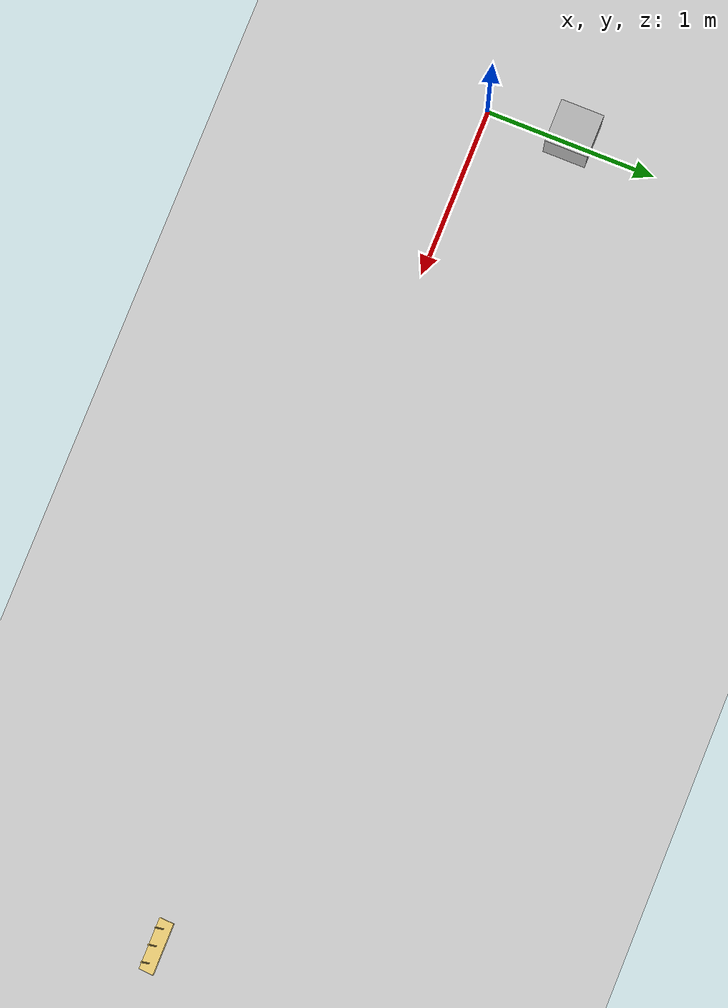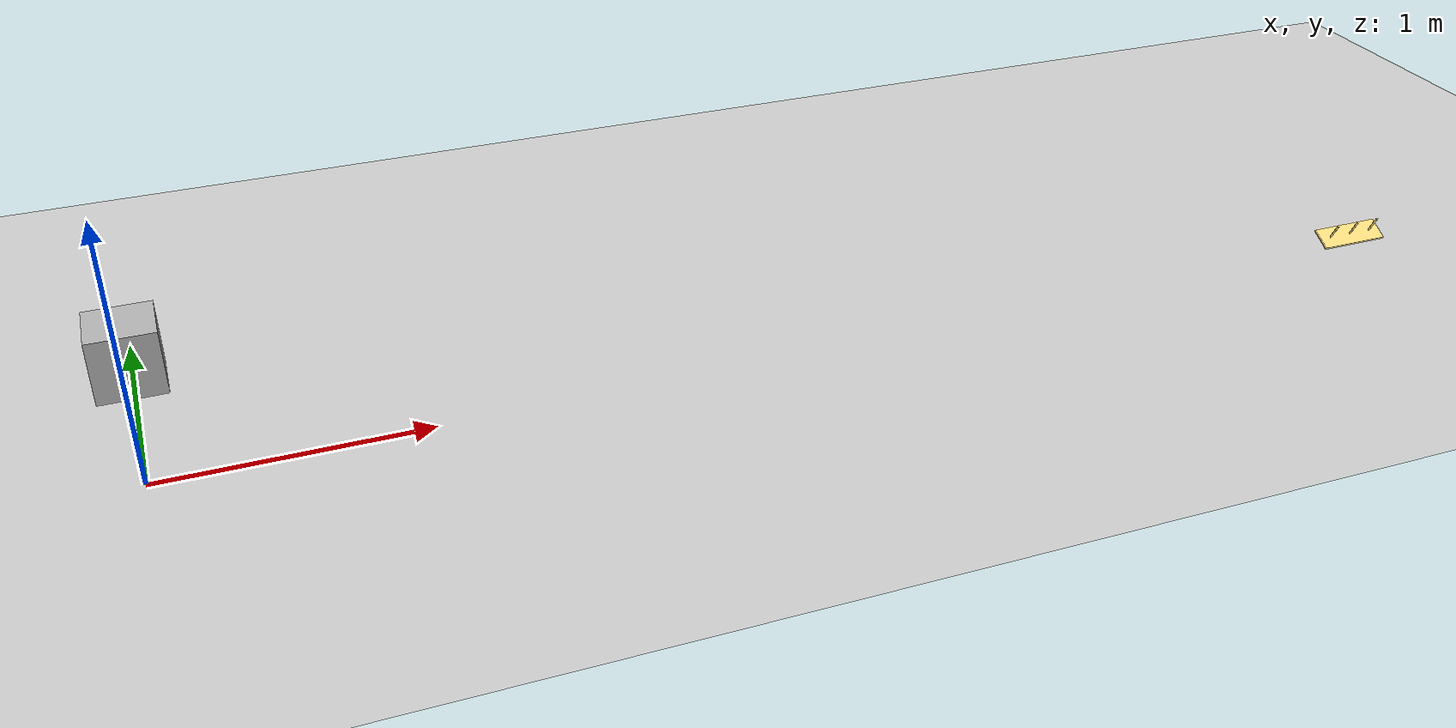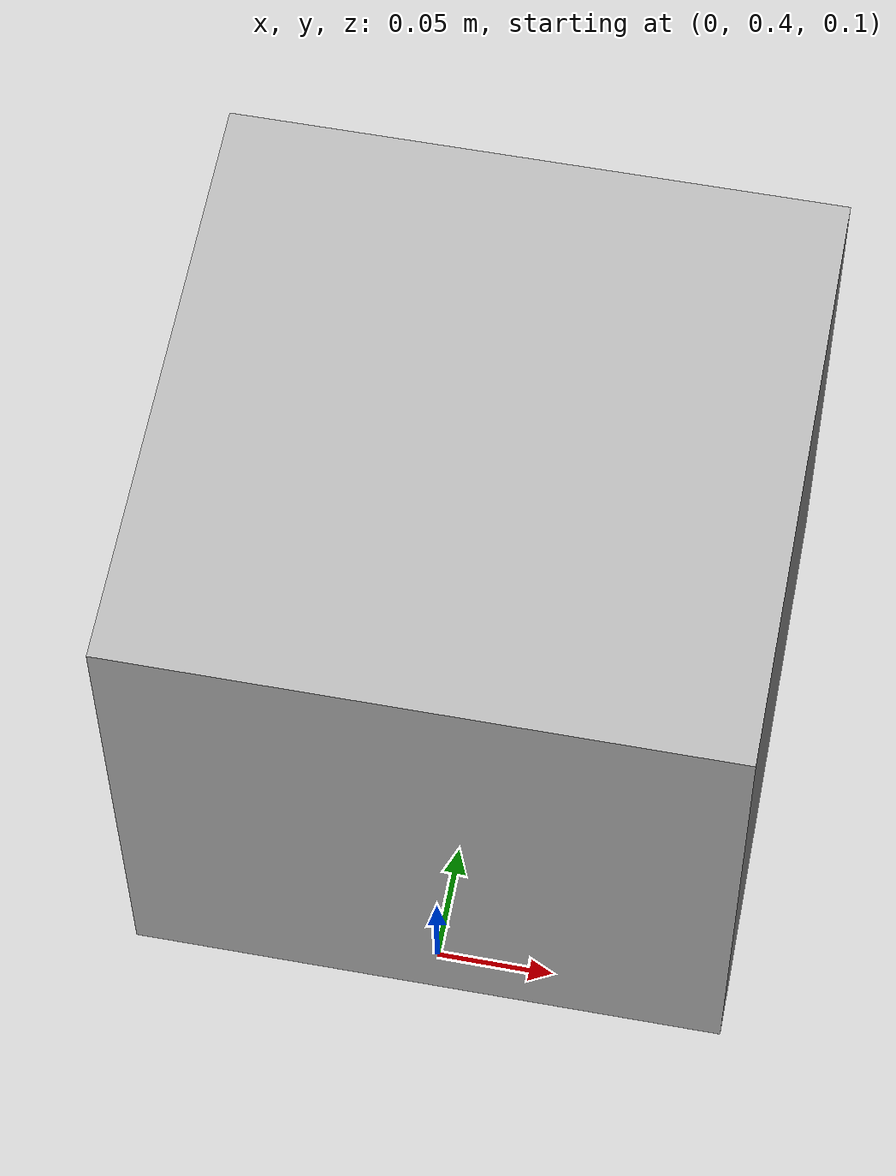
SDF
<?xml version="1.0"?>
<sdf version="1.9">
  <world name="playground">

    <gravity>0 0 -9.8</gravity>
    <magnetic_field>6e-06 2.3e-05 -4.2e-05</magnetic_field>
    <physics name="1ms" type="ignored">
      <max_step_size>0.0001</max_step_size>
      <real_time_factor>1</real_time_factor>
      <real_time_update_rate>1000</real_time_update_rate>
    </physics>
    <plugin
      filename="libignition-gazebo-physics-system.so"
      name="ignition::gazebo::systems::Physics">
    </plugin>
    <plugin
      filename="libignition-gazebo-user-commands-system.so"
      name="ignition::gazebo::systems::UserCommands">
    </plugin>
    <plugin
      filename="libignition-gazebo-scene-broadcaster-system.so"
      name="ignition::gazebo::systems::SceneBroadcaster">
    </plugin>
    <plugin name="gz::sim::systems::Physics" filename="gz-sim-physics-system"/>
    <plugin name="gz::sim::systems::UserCommands" filename="gz-sim-user-commands-system"/>
    <plugin name="gz::sim::systems::SceneBroadcaster" filename="gz-sim-scene-broadcaster-system"/>
    <plugin name="gz::sim::systems::Contact" filename="gz-sim-contact-system"/>
    <plugin name='ign_ros2_control::IgnitionROS2ControlPlugin' filename='libign_ros2_control-system.so'>
    <parameters>/home/leo/workspace/ur_gz/install/ur_simulation_gz/share/ur_simulation_gz/config/ur_controllers.yaml</parameters>
        <controller_manager_node_name>controller_manager</controller_manager_node_name>
    </plugin>
    <atmosphere type="adiabatic"/>
    <scene>
      <ambient>0.400000006 0.400000006 0.400000006 1</ambient>
      <background>0.699999988 0.699999988 0.699999988 1</background>
      <shadows>true</shadows>
    </scene>
    <model name="ground_plane">
      <static>true</static>
      <link name="link">
        <collision name="collision">
          <geometry>
            <plane>
              <normal>0 0 1</normal>
              <size>100 100</size>
            </plane>
          </geometry>
          <surface>
            <friction>
              <ode/>
            </friction>
            <bounce/>
            <contact/>
          </surface>
        </collision>
        <visual name="visual">
          <geometry>
            <plane>
              <normal>0 0 1</normal>
              <size>100 100</size>
            </plane>
          </geometry>
          <material>
            <ambient>0.800000012 0.800000012 0.800000012 1</ambient>
            <diffuse>0.800000012 0.800000012 0.800000012 1</diffuse>
            <specular>0.800000012 0.800000012 0.800000012 1</specular>
          </material>
        </visual>
        <pose>0 0 0 0 0 0</pose>
        <inertial>
          <pose>0 0 0 0 0 0</pose>
          <mass>1</mass>
          <inertia>
            <ixx>1</ixx>
            <ixy>0</ixy>
            <ixz>0</ixz>
            <iyy>1</iyy>
            <iyz>0</iyz>
            <izz>1</izz>
          </inertia>
        </inertial>
        <enable_wind>false</enable_wind>
      </link>
      <pose>0 0 0 0 0 0</pose>
      <self_collide>false</self_collide>
    </model>
    <model name='caixa'>
      <pose>0 0.5 0.25 0 0 0</pose>
      <link name='box_link'>
        <inertial>
          <inertia>
            <ixx>0.16666</ixx>
            <ixy>0</ixy>
            <ixz>0</ixz>
            <iyy>0.16666</iyy>
            <iyz>0</iyz>
            <izz>0.16666</izz>
          </inertia>
          <mass>1</mass>
          <pose>0 0 0 0 0 0</pose>
        </inertial>
        <collision name='box_collision'>
          <geometry>
            <box>
              <size>0.250000000000000000 0.250000000000000000 0.250000000000000000</size>
            </box>
          </geometry>
          <surface>
            <friction>
              <ode/>
            </friction>
            <bounce/>
            <contact/>
          </surface>
        </collision>
        <visual name='box_visual'>
          <geometry>
            <box>
              <size>0.250000000000000003 0.250000000000000003 0.250000000000000003</size>
            </box>
          </geometry>
          <material>
            <ambient>0.300000012 0.300000012 0.300000012 1</ambient>
            <diffuse>0.699999988 0.699999988 0.699999988 1</diffuse>
            <specular>1 1 1 1</specular>
          </material>
        </visual>
        <pose>0 0 0 0 0 0</pose>
        <enable_wind>false</enable_wind>
      </link>
      <static>true</static>
      <self_collide>false</self_collide>
    </model>

    <include>
      <uri>file:///home/leo/workspace/ur_gz/src/Universal_Robots_ROS2_Ignition_Simulation/ur_simulation_gz/sdf/models/towerbase/towerbase.sdf</uri>
      <pose>5 0.0 0.0 0.5 0.0 0.0</pose>
    </include>

    <light name="sun" type="directional">
      <pose>0 0 10 0 0 0</pose>
      <cast_shadows>true</cast_shadows>
      <intensity>1</intensity>
      <direction>-0.5 0.10000000000000001 -0.90000000000000002</direction>
      <diffuse>0.800000012 0.800000012 0.800000012 1</diffuse>
      <specular>0.200000003 0.200000003 0.200000003 1</specular>
      <attenuation>
        <range>1000</range>
        <linear>0.01</linear>
        <constant>0.90000000000000002</constant>
        <quadratic>0.001</quadratic>
      </attenuation>
      <spot>
        <inner_angle>0</inner_angle>
        <outer_angle>0</outer_angle>
        <falloff>0</falloff>
      </spot>
    </light>

  </world>
</sdf>

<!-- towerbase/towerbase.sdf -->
<sdf version="1.6">
    <model name="towerbase">
        <link name="base_link">
            <frame name="towerbase_frame">
                <pose>0 0 0 0 -0 0</pose>
            </frame>
            <visual name="towerbase_0_towerbase_visual">
                <pose>-0.013237686827778816223 0.047771236188709736981 0.0043710258603096019403 0 -0 0</pose>
                <geometry>
                    <mesh>
                        <uri>file://home/leo/workspace/ur_gz/src/Universal_Robots_ROS2_Ignition_Simulation/ur_simulation_gz/sdf/models/towerbase/towerbase.dae</uri>
                    </mesh>
                </geometry>
                <material><ambient>0.96078431372549022438 0.83529411764705885357 0.47058823529411764053 1</ambient><diffuse>0.96078431372549022438 0.83529411764705885357 0.47058823529411764053 1</diffuse><specular>0.1 0.1 0.1 1</specular><emissive>0 0 0 0</emissive></material>
            </visual>
            <collision name="towerbase_0_towerbase_visual">
                <pose>-0.013237686827778816223 0.047771236188709736981 0.0043710258603096019403 0 -0 0</pose>
                <geometry>
                    <mesh>
                        <uri>file://home/leo/workspace/ur_gz/src/Universal_Robots_ROS2_Ignition_Simulation/ur_simulation_gz/sdf/models/towerbase/towerbase.stl</uri>
                    </mesh>
                </geometry>
            </collision>
            <inertial>
                <pose frame="towerbase_frame">-0.013237686827778696527 0.015271236188709728931 0.0050520856935159473566 0 0 0</pose>
                <mass>0.48339258768527876287</mass>
                <inertia><ixx>0.00018404470856662861773</ixx><ixy>0</ixy><ixz>0</ixz><iyy>0.0036347022723018217877</iyy><iyz>0</iyz><izz>0.0037843567593217096803</izz></inertia>
            </inertial>
        </link>
    </model>

</sdf>
